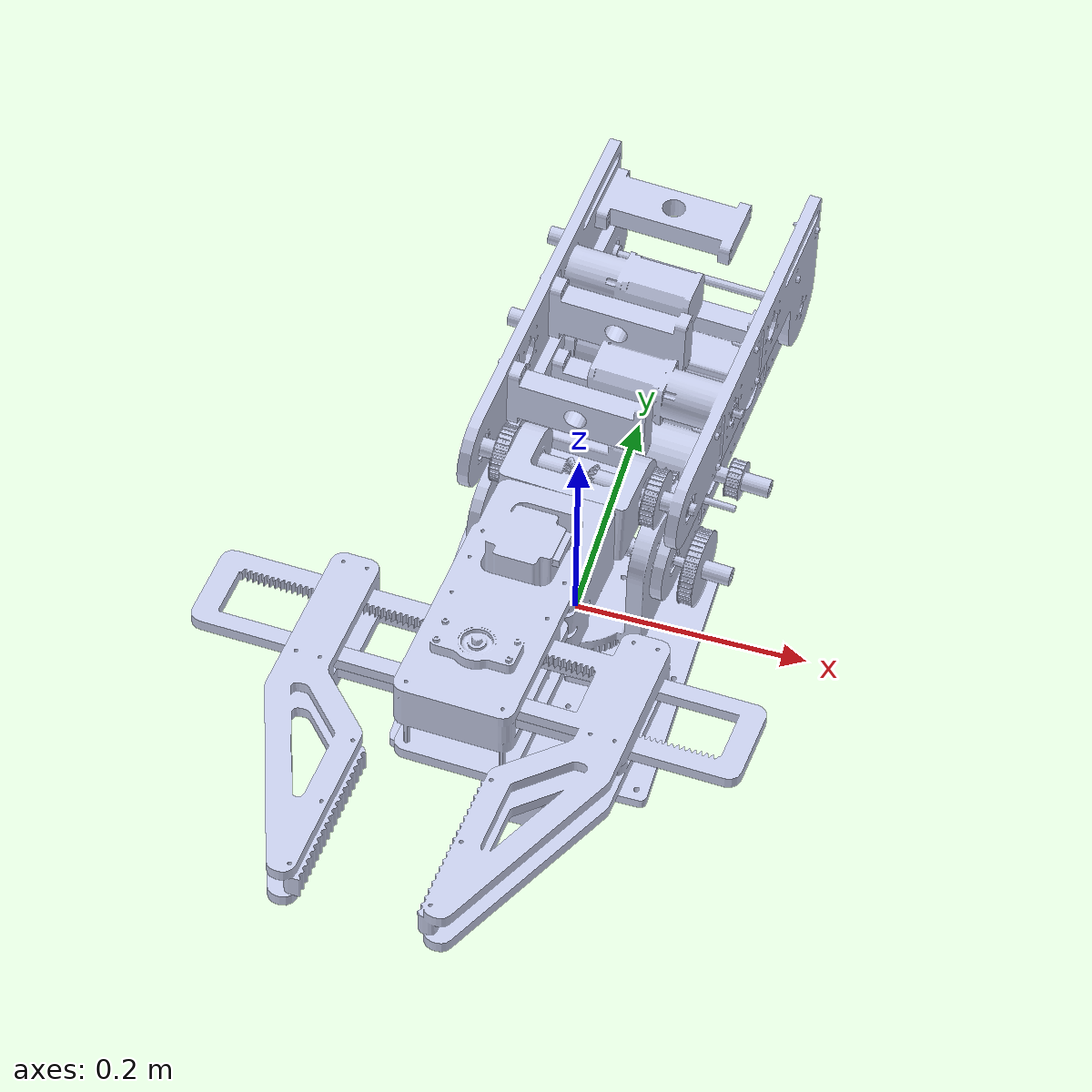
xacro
<?xml version="1.0" encoding="utf-8"?>

<robot
  name="MK_3">
  <link
    name="base_link">
    <inertial>
      <origin
        xyz="-2.614E-12 -0.014338 0.076588"
        rpy="0 0 0" />
      <mass
        value="0.89676" />
      <inertia
        ixx="0.0029132"
        ixy="9.1838E-14"
        ixz="-6.9618E-14"
        iyy="0.0051542"
        iyz="-8.7453E-07"
        izz="0.0024199" />
    </inertial>
    <visual>
      <origin
        xyz="0 0 0"
        rpy="0 0 0" />
      <geometry>
        <mesh
          filename="package://digital_twin/meshes/base_link.STL" />
      </geometry>
      <material
        name="">
        <color
          rgba="0.79216 0.81961 0.93333 1" />
      </material>
    </visual>
    <collision>
      <origin
        xyz="0 0 0"
        rpy="0 0 0" />
      <geometry>
        <mesh
          filename="package://digital_twin/meshes/base_link.STL" />
      </geometry>
    </collision>
  </link>
  <link
    name="Rotator">
    <inertial>
      <origin
        xyz="0.00832223518951668 0.0533317908359785 -1.67328065465988E-13"
        rpy="0 0 0" />
      <mass
        value="0.532269733433987" />
      <inertia
        ixx="0.000769797367334732"
        ixy="-2.84652485589737E-19"
        ixz="-8.93588486896874E-14"
        iyy="0.00143435769647691"
        iyz="3.95143788367136E-20"
        izz="0.00158917704576289" />
    </inertial>
    <visual>
      <origin
        xyz="0 0 0"
        rpy="0 0 0" />
      <geometry>
        <mesh
          filename="package://digital_twin/meshes/Rotator.STL" />
      </geometry>
      <material
        name="">
        <color
          rgba="0.792156862745098 0.819607843137255 0.933333333333333 1" />
      </material>
    </visual>
    <collision>
      <origin
        xyz="0 0 0"
        rpy="0 0 0" />
      <geometry>
        <mesh
          filename="package://digital_twin/meshes/Rotator.STL" />
      </geometry>
    </collision>
  </link>
  <joint
    name="joint_0"
    type="revolute">
    <origin
      xyz="0 0 0"
      rpy="1.5708 0 -0.07149" />
    <parent
      link="base_link" />
    <child
      link="Rotator" />
    <axis
      xyz="0 1 0" />
    <limit
      lower="-1.49"
      upper="1.66"
      effort="10"
      velocity="10" />
  </joint>
  <link
    name="Under_arm">
    <inertial>
      <origin
        xyz="-0.00209749548543436 0.0601447609685374 -0.141411988419937"
        rpy="0 0 0" />
      <mass
        value="1.68445759514121" />
      <inertia
        ixx="0.00500295171907744"
        ixy="9.96177432275817E-07"
        ixz="-2.34406332677419E-06"
        iyy="0.005153605711482"
        iyz="0.0014883926767954"
        izz="0.00228386611519836" />
    </inertial>
    <visual>
      <origin
        xyz="0 0 0"
        rpy="0 0 0" />
      <geometry>
        <mesh
          filename="package://digital_twin/meshes/Under_arm.STL" />
      </geometry>
      <material
        name="">
        <color
          rgba="0.792156862745098 0.819607843137255 0.933333333333333 1" />
      </material>
    </visual>
    <collision>
      <origin
        xyz="0 0 0"
        rpy="0 0 0" />
      <geometry>
        <mesh
          filename="package://digital_twin/meshes/Under_arm.STL" />
      </geometry>
    </collision>
  </link>
  <joint
    name="joint_1"
    type="revolute">
    <origin
      xyz="0 0.10719 0"
      rpy="-0.44821 0 0" />
    <parent
      link="Rotator" />
    <child
      link="Under_arm" />
    <axis
      xyz="1 0 0" />
    <limit
      lower="-0.65"
      upper="2.65"
      effort="10"
      velocity="10" />
  </joint>
  <link
    name="Upper_arm">
    <inertial>
      <origin
        xyz="-0.0054902424312099 0.0818395980979168 0.127092205468036"
        rpy="0 0 0" />
      <mass
        value="1.25059268398364" />
      <inertia
        ixx="0.00703359321865347"
        ixy="8.40257835641074E-14"
        ixz="4.87544615681949E-13"
        iyy="0.00664799430506723"
        iyz="-0.00145068237099487"
        izz="0.00141574326428778" />
    </inertial>
    <visual>
      <origin
        xyz="0 0 0"
        rpy="0 0 0" />
      <geometry>
        <mesh
          filename="package://digital_twin/meshes/Upper_arm.STL" />
      </geometry>
      <material
        name="">
        <color
          rgba="0.792156862745098 0.819607843137255 0.933333333333333 1" />
      </material>
    </visual>
    <collision>
      <origin
        xyz="0 0 0"
        rpy="0 0 0" />
      <geometry>
        <mesh
          filename="package://digital_twin/meshes/Upper_arm.STL" />
      </geometry>
    </collision>
  </link>
  <joint
    name="joint_2"
    type="revolute">
    <origin
      xyz="0 0.11734 -0.2761"
      rpy="0.52834 0 0" />
    <parent
      link="Under_arm" />
    <child
      link="Upper_arm" />
    <axis
      xyz="1 0 0" />
    <limit
      lower="-4"
      upper="0"
      effort="10"
      velocity="10" />
  </joint>
  <link
    name="EE_rotator">
    <inertial>
      <origin
        xyz="3.20689889057348E-06 -0.00390688270197542 0.021158028835835"
        rpy="0 0 0" />
      <mass
        value="0.252363840532265" />
      <inertia
        ixx="0.000181741952478104"
        ixy="7.13189472167223E-06"
        ixz="1.31689205199227E-06"
        iyy="0.000446008773430954"
        iyz="6.3077100397889E-06"
        izz="0.00041301280533603" />
    </inertial>
    <visual>
      <origin
        xyz="0 0 0"
        rpy="0 0 0" />
      <geometry>
        <mesh
          filename="package://digital_twin/meshes/EE_rotator.STL" />
      </geometry>
      <material
        name="">
        <color
          rgba="0.792156862745098 0.819607843137255 0.933333333333333 1" />
      </material>
    </visual>
    <collision>
      <origin
        xyz="0 0 0"
        rpy="0 0 0" />
      <geometry>
        <mesh
          filename="package://digital_twin/meshes/EE_rotator.STL" />
      </geometry>
    </collision>
  </link>
  <joint
    name="joint_3"
    type="revolute">
    <origin
      xyz="0 0.10845 0.28834"
      rpy="-0.36956 0.0050751 0.02682" />
    <parent
      link="Upper_arm" />
    <child
      link="EE_rotator" />
    <axis
      xyz="0.99963 -0.026839 -0.0049558" />
    <limit
      lower="-1.8"
      upper="2"
      effort="10"
      velocity="10" />
  </joint>
  <link
    name="EE_effector">
    <inertial>
      <origin
        xyz="0.000243881701395048 -0.0196232868802083 0.148311418380929"
        rpy="0 0 0" />
      <mass
        value="1.08242324351808" />
      <inertia
        ixx="0.00166708823124283"
        ixy="2.05337040606625E-05"
        ixz="3.79063048928672E-06"
        iyy="0.0024150350921014"
        iyz="0.000246032819244319"
        izz="0.00112802441471166" />
    </inertial>
    <visual>
      <origin
        xyz="0 0 0"
        rpy="0 0 0" />
      <geometry>
        <mesh
          filename="package://digital_twin/meshes/EE_effector.STL" />
      </geometry>
      <material
        name="">
        <color
          rgba="0.792156862745098 0.819607843137255 0.933333333333333 1" />
      </material>
    </visual>
    <collision>
      <origin
        xyz="0 0 0"
        rpy="0 0 0" />
      <geometry>
        <mesh
          filename="package://digital_twin/meshes/EE_effector.STL" />
      </geometry>
    </collision>
  </link>
  <joint
    name="joint_4"
    type="revolute">
    <origin
      xyz="0 -0.0041237 0.022332"
      rpy="-0.0001209 -0.0066808 0.03619" />
    <parent
      link="EE_rotator" />
    <child
      link="EE_effector" />
    <axis
      xyz="0 0.18158 -0.98338" />
    <limit
      lower="-1.45"
      upper="1.45"
      effort="10"
      velocity="10" />
  </joint>
  <link
    name="Jaw_right">
    <inertial>
      <origin
        xyz="-0.10554004646236 0.310548626454889 0.317394756215972"
        rpy="0 0 0" />
      <mass
        value="0.479027528414459" />
      <inertia
        ixx="0.00219714041845617"
        ixy="-6.35680544017577E-06"
        ixz="0.000444591822500905"
        iyy="0.00485521465492216"
        iyz="0.000378659410516348"
        izz="0.00280739999257736" />
    </inertial>
    <visual>
      <origin
        xyz="0 0 0"
        rpy="0 0 0" />
      <geometry>
        <mesh
          filename="package://digital_twin/meshes/Jaw_right.STL" />
      </geometry>
      <material
        name="">
        <color
          rgba="0.792156862745098 0.819607843137255 0.933333333333333 1" />
      </material>
    </visual>
    <collision>
      <origin
        xyz="0 0 0"
        rpy="0 0 0" />
      <geometry>
        <mesh
          filename="package://digital_twin/meshes/Jaw_right.STL" />
      </geometry>
    </collision>
  </link>
  <joint
    name="gripper_joint_0"
    type="prismatic">
    <origin
      xyz="0.16248 -0.34222 -0.035375"
      rpy="0 0 0" />
    <parent
      link="EE_effector" />
    <child
      link="Jaw_right" />
    <axis
      xyz="0.99963 -0.026839 -0.0049558" />
    <limit
      lower="-0.045"
      upper="0.162"
      effort="10"
      velocity="10" />
  </joint>
  <link
    name="Jaw_left">
    <inertial>
      <origin
        xyz="0.125215497715907 0.301020077840735 0.316520636753305"
        rpy="0 0 0" />
      <mass
        value="0.479027528414458" />
      <inertia
        ixx="0.00219714041845615"
        ixy="0.000156013324876304"
        ixz="-0.000434756361534094"
        iyy="0.00484649569493953"
        iyz="0.000401464083050061"
        izz="0.00281611895255998" />
    </inertial>
    <visual>
      <origin
        xyz="0 0 0"
        rpy="0 0 0" />
      <geometry>
        <mesh
          filename="package://digital_twin/meshes/Jaw_left.STL" />
      </geometry>
      <material
        name="">
        <color
          rgba="0.792156862745098 0.819607843137255 0.933333333333333 1" />
      </material>
    </visual>
    <collision>
      <origin
        xyz="0 0 0"
        rpy="0 0 0" />
      <geometry>
        <mesh
          filename="package://digital_twin/meshes/Jaw_left.STL" />
      </geometry>
    </collision>
  </link>
  <joint
    name="gripper_joint_1"
    type="prismatic">
    <origin
      xyz="-0.18107 -0.33299 -0.033672"
      rpy="0 0 0" />
    <parent
      link="EE_effector" />
    <child
      link="Jaw_left" />
    <axis
      xyz="0.99963 -0.026839 -0.0049558" />
    <limit
      lower="0"
      upper="1"
      effort="10"
      velocity="10" />
    <mimic
      joint="gripper_joint_0"
      multiplier="-1"
      offset="0" />
  </joint>
</robot>
